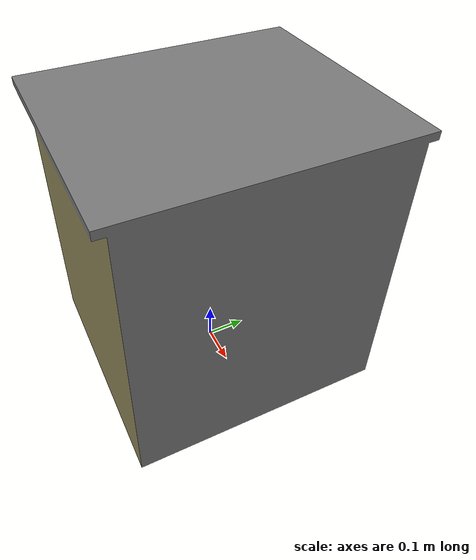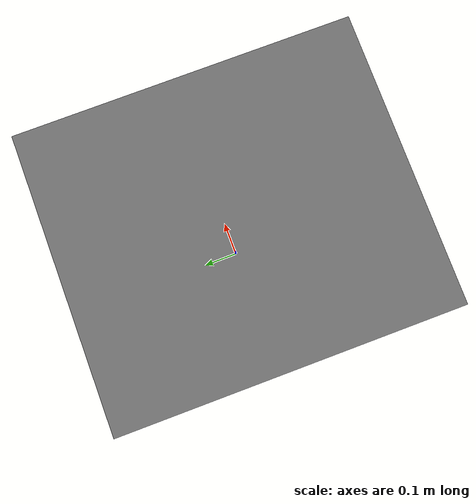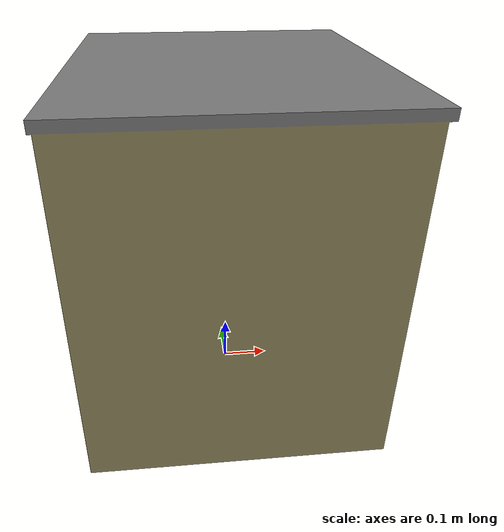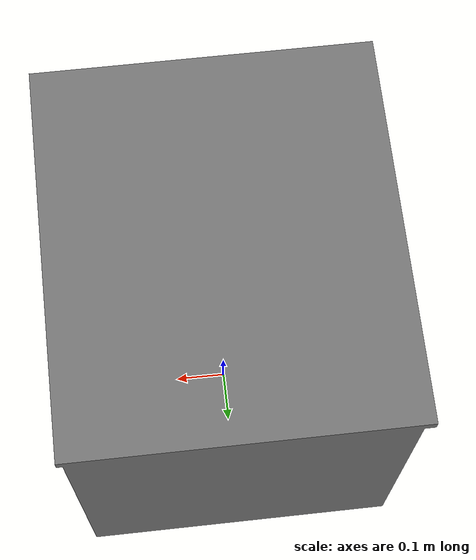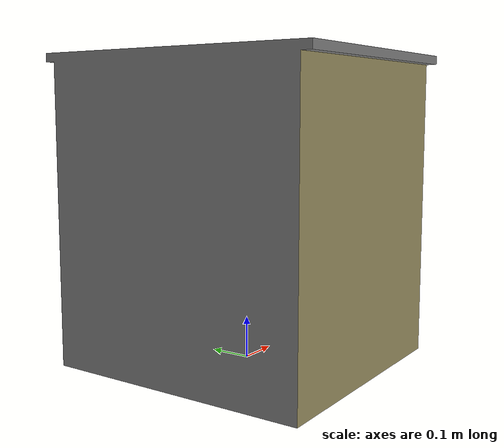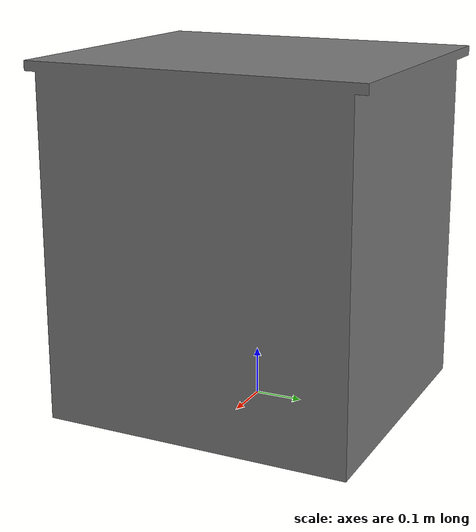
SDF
<sdf version='1.6'>
  <model name='Drawer_Grey'>
    <link name='Drawer_Grey'>
      <pose frame=''>0 0 0 0 -0 0</pose>
      <inertial>
        <pose frame=''>0 -0.008817 0.36545 0 -0 0</pose>
        <mass>61.33</mass>
        <inertia>
          <ixx>23.603</ixx>
          <ixy>-4.1081e-16</ixy>
          <ixz>7.0945e-16</ixz>
          <iyy>21.701</iyy>
          <iyz>0.026704</iyz>
          <izz>19.382</izz>
        </inertia>
      </inertial>
      <collision name='Drawer_Grey_collision'>
        <pose frame=''>0 0 0 1.5708 -0 0</pose>
        <geometry>
          <mesh>
            <scale>1 1 1</scale>
            <uri>model://Drawer_Grey/meshes/Drawer_Grey.dae</uri>
          </mesh>
        </geometry>
      </collision>
      <visual name='Drawer_Grey_visual'>
        <pose frame=''>0 0 0 1.5708 -0 0</pose>
        <geometry>
          <mesh>
            <scale>1 1 1</scale>
            <uri>model://Drawer_Grey/meshes/Drawer_Grey.dae</uri>
          </mesh>
        </geometry>
      </visual>
    </link>
  </model>
</sdf>
